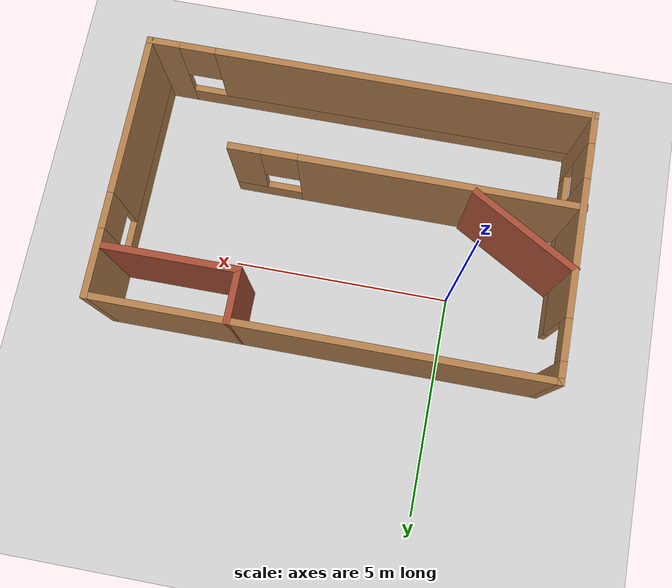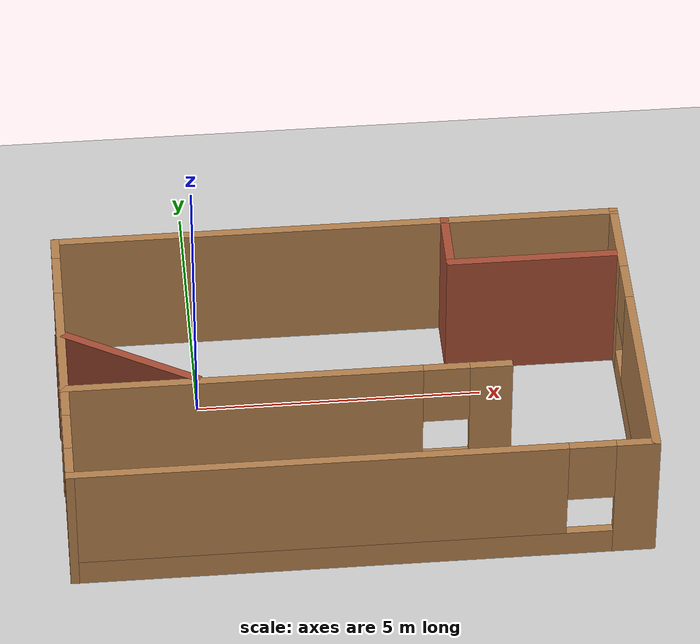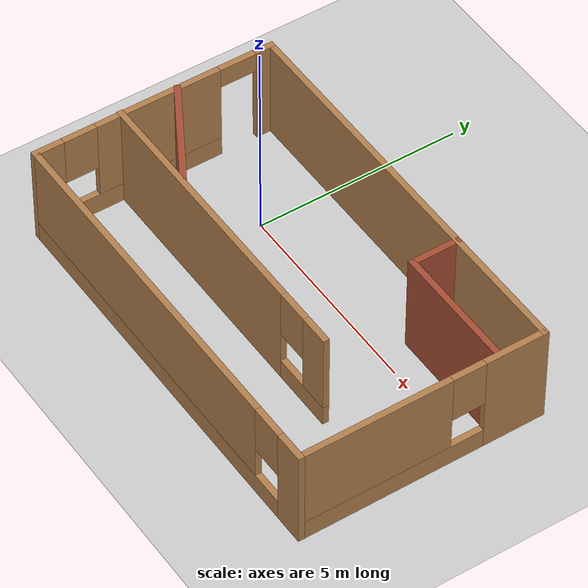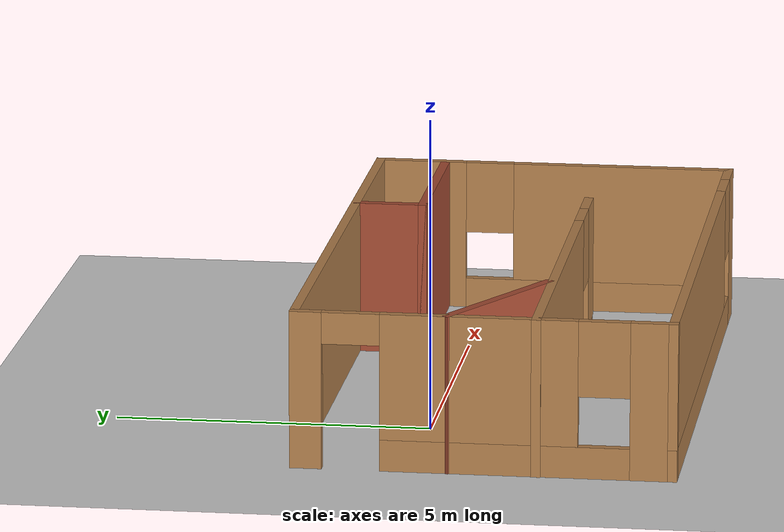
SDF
<sdf version="1.7">
 <world name="default">
  <light name="sun" type="directional">
   <pose>0 0 10 0 -0 0</pose>
   <diffuse>0.8 0.8 0.8 1</diffuse>
   <specular>0.2 0.2 0.2 1</specular>
   <attenuation>
    <range>1000</range>
    <constant>0.9</constant>
    <linear>0.01</linear>
    <quadratic>0.001</quadratic>
   </attenuation>
   <direction>-0.5 0.1 -0.9</direction>
   <spot><inner_angle>0</inner_angle><outer_angle>0</outer_angle><falloff>0</falloff></spot>
  </light>
  <model name="ground_plane">
   <static>1</static>
   <link name="link">
    <collision name="collision">
     <geometry><plane><normal>0 0 1</normal><size>100 100</size></plane></geometry>
     <surface><friction><ode><mu>100</mu><mu2>50</mu2></ode></friction></surface>
    </collision>
    <visual name="visual">
     <cast_shadows>0</cast_shadows>
     <geometry><plane><normal>0 0 1</normal><size>100 100</size></plane></geometry>
     <material>
      <script><uri>file://media/materials/scripts/gazebo.material</uri><name>Gazebo/Grey</name></script>
     </material>
    </visual>
   </link>
  </model>
  <gravity>0 0 -9.8</gravity>
  <magnetic_field>6e-06 2.3e-05 -4.2e-05</magnetic_field>
  <atmosphere type="adiabatic"/>
  <physics type="ode">
   <max_step_size>0.001</max_step_size>
   <real_time_factor>1</real_time_factor>
   <real_time_update_rate>1000</real_time_update_rate>
  </physics>
  <scene><ambient>0.4 0.4 0.4 1</ambient><background>0.7 0.7 0.7 1</background><shadows>1</shadows></scene>
  <spherical_coordinates>
   <surface_model>EARTH_WGS84</surface_model>
   <latitude_deg>0</latitude_deg>
   <longitude_deg>0</longitude_deg>
   <elevation>0</elevation>
   <heading_deg>0</heading_deg>
  </spherical_coordinates>
  <model name="Untitled">
   <pose>2.57742 1.69923 0 0 -0 0</pose>
   <link name="Wall_13">
    <collision name="Wall_13_Collision">
     <geometry><box><size>10 0.15 2.5</size></box></geometry>
     <pose>0 0 1.25 0 -0 0</pose>
    </collision>
    <visual name="Wall_13_Visual">
     <pose>0 0 1.25 0 -0 0</pose>
     <geometry><box><size>10 0.15 2.5</size></box></geometry>
     <material>
      <script><uri>file://media/materials/scripts/gazebo.material</uri><name>Gazebo/Wood</name></script>
      <ambient>1 1 1 1</ambient>
     </material>
     <meta><layer>0</layer></meta>
    </visual>
    <pose>0.013726 0.111531 0 0 -0 0</pose>
   </link>
   <link name="Wall_14">
    <pose>4.93873 -2.81347 0 0 -0 -1.5708</pose>
    <visual name="Wall_14_Visual_0">
     <pose>-2.23553 0 1.25 0 -0 0</pose>
     <geometry><box><size>1.52895 0.15 2.5</size></box></geometry>
     <material>
      <script><uri>file://media/materials/scripts/gazebo.material</uri><name>Gazebo/Wood</name></script>
      <ambient>1 1 1 1</ambient>
     </material>
     <meta><layer>0</layer></meta>
    </visual>
    <collision name="Wall_14_Collision_0">
     <geometry><box><size>1.52895 0.15 2.5</size></box></geometry>
     <pose>-2.23553 0 1.25 0 -0 0</pose>
    </collision>
    <visual name="Wall_14_Visual_1">
     <pose>0.764473 0 0.25 0 -0 0</pose>
     <geometry><box><size>4.47105 0.15 0.5</size></box></geometry>
     <material>
      <script><uri>file://media/materials/scripts/gazebo.material</uri><name>Gazebo/Wood</name></script>
      <ambient>1 1 1 1</ambient>
     </material>
     <meta><layer>0</layer></meta>
    </visual>
    <collision name="Wall_14_Collision_1">
     <geometry><box><size>4.47105 0.15 0.5</size></box></geometry>
     <pose>0.764473 0 0.25 0 -0 0</pose>
    </collision>
    <visual name="Wall_14_Visual_2">
     <pose>1.16447 0 1.5 0 -0 0</pose>
     <geometry><box><size>3.67105 0.15 2</size></box></geometry>
     <material>
      <script><uri>file://media/materials/scripts/gazebo.material</uri><name>Gazebo/Wood</name></script>
      <ambient>1 1 1 1</ambient>
     </material>
     <meta><layer>0</layer></meta>
    </visual>
    <collision name="Wall_14_Collision_2">
     <geometry><box><size>3.67105 0.15 2</size></box></geometry>
     <pose>1.16447 0 1.5 0 -0 0</pose>
    </collision>
    <visual name="Wall_14_Visual_3">
     <pose>-1.07105 0 1.9 0 -0 0</pose>
     <geometry><box><size>0.8 0.15 1.2</size></box></geometry>
     <material>
      <script><uri>file://media/materials/scripts/gazebo.material</uri><name>Gazebo/Wood</name></script>
      <ambient>1 1 1 1</ambient>
     </material>
     <meta><layer>0</layer></meta>
    </visual>
    <collision name="Wall_14_Collision_3">
     <geometry><box><size>0.8 0.15 1.2</size></box></geometry>
     <pose>-1.07105 0 1.9 0 -0 0</pose>
    </collision>
   </link>
   <link name="Wall_15">
    <pose>0.013726 -5.73847 0 0 -0 3.14159</pose>
    <visual name="Wall_15_Visual_0">
     <pose>-4.62751 0 1.25 0 -0 0</pose>
     <geometry><box><size>0.744989 0.15 2.5</size></box></geometry>
     <material>
      <script><uri>file://media/materials/scripts/gazebo.material</uri><name>Gazebo/Wood</name></script>
      <ambient>1 1 1 1</ambient>
     </material>
     <meta><layer>0</layer></meta>
    </visual>
    <collision name="Wall_15_Collision_0">
     <geometry><box><size>0.744989 0.15 2.5</size></box></geometry>
     <pose>-4.62751 0 1.25 0 -0 0</pose>
    </collision>
    <visual name="Wall_15_Visual_1">
     <pose>0.372494 0 0.25 0 -0 0</pose>
     <geometry><box><size>9.25501 0.15 0.5</size></box></geometry>
     <material>
      <script><uri>file://media/materials/scripts/gazebo.material</uri><name>Gazebo/Wood</name></script>
      <ambient>1 1 1 1</ambient>
     </material>
     <meta><layer>0</layer></meta>
    </visual>
    <collision name="Wall_15_Collision_1">
     <geometry><box><size>9.25501 0.15 0.5</size></box></geometry>
     <pose>0.372494 0 0.25 0 -0 0</pose>
    </collision>
    <visual name="Wall_15_Visual_2">
     <pose>0.772494 0 1.5 0 -0 0</pose>
     <geometry><box><size>8.45501 0.15 2</size></box></geometry>
     <material>
      <script><uri>file://media/materials/scripts/gazebo.material</uri><name>Gazebo/Wood</name></script>
      <ambient>1 1 1 1</ambient>
     </material>
     <meta><layer>0</layer></meta>
    </visual>
    <collision name="Wall_15_Collision_2">
     <geometry><box><size>8.45501 0.15 2</size></box></geometry>
     <pose>0.772494 0 1.5 0 -0 0</pose>
    </collision>
    <visual name="Wall_15_Visual_3">
     <pose>-3.85501 0 1.9 0 -0 0</pose>
     <geometry><box><size>0.8 0.15 1.2</size></box></geometry>
     <material>
      <script><uri>file://media/materials/scripts/gazebo.material</uri><name>Gazebo/Wood</name></script>
      <ambient>1 1 1 1</ambient>
     </material>
     <meta><layer>0</layer></meta>
    </visual>
    <collision name="Wall_15_Collision_3">
     <geometry><box><size>0.8 0.15 1.2</size></box></geometry>
     <pose>-3.85501 0 1.9 0 -0 0</pose>
    </collision>
   </link>
   <link name="Wall_16">
    <pose>-4.91127 -2.81347 0 0 -0 1.5708</pose>
    <visual name="Wall_16_Visual_0">
     <pose>-2.63364 0 1.25 0 -0 0</pose>
     <geometry><box><size>0.732723 0.15 2.5</size></box></geometry>
     <material>
      <script><uri>file://media/materials/scripts/gazebo.material</uri><name>Gazebo/Wood</name></script>
      <ambient>1 1 1 1</ambient>
     </material>
     <meta><layer>0</layer></meta>
    </visual>
    <collision name="Wall_16_Collision_0">
     <geometry><box><size>0.732723 0.15 2.5</size></box></geometry>
     <pose>-2.63364 0 1.25 0 -0 0</pose>
    </collision>
    <visual name="Wall_16_Visual_1">
     <pose>2.75025 0 1.25 0 -0 0</pose>
     <geometry><box><size>0.499503 0.15 2.5</size></box></geometry>
     <material>
      <script><uri>file://media/materials/scripts/gazebo.material</uri><name>Gazebo/Wood</name></script>
      <ambient>1 1 1 1</ambient>
     </material>
     <meta><layer>0</layer></meta>
    </visual>
    <collision name="Wall_16_Collision_1">
     <geometry><box><size>0.499503 0.15 2.5</size></box></geometry>
     <pose>2.75025 0 1.25 0 -0 0</pose>
    </collision>
    <visual name="Wall_16_Visual_2">
     <pose>-0.33339 0 0.25 0 -0 0</pose>
     <geometry><box><size>3.86777 0.15 0.5</size></box></geometry>
     <material>
      <script><uri>file://media/materials/scripts/gazebo.material</uri><name>Gazebo/Wood</name></script>
      <ambient>1 1 1 1</ambient>
     </material>
     <meta><layer>0</layer></meta>
    </visual>
    <collision name="Wall_16_Collision_2">
     <geometry><box><size>3.86777 0.15 0.5</size></box></geometry>
     <pose>-0.33339 0 0.25 0 -0 0</pose>
    </collision>
    <visual name="Wall_16_Visual_3">
     <pose>0.06661 0 1.5 0 -0 0</pose>
     <geometry><box><size>3.06777 0.15 2</size></box></geometry>
     <material>
      <script><uri>file://media/materials/scripts/gazebo.material</uri><name>Gazebo/Wood</name></script>
      <ambient>1 1 1 1</ambient>
     </material>
     <meta><layer>0</layer></meta>
    </visual>
    <collision name="Wall_16_Collision_3">
     <geometry><box><size>3.06777 0.15 2</size></box></geometry>
     <pose>0.06661 0 1.5 0 -0 0</pose>
    </collision>
    <visual name="Wall_16_Visual_4">
     <pose>-1.86728 0 1.9 0 -0 0</pose>
     <geometry><box><size>0.8 0.15 1.2</size></box></geometry>
     <material>
      <script><uri>file://media/materials/scripts/gazebo.material</uri><name>Gazebo/Wood</name></script>
      <ambient>1 1 1 1</ambient>
     </material>
     <meta><layer>0</layer></meta>
    </visual>
    <collision name="Wall_16_Collision_4">
     <geometry><box><size>0.8 0.15 1.2</size></box></geometry>
     <pose>-1.86728 0 1.9 0 -0 0</pose>
    </collision>
    <visual name="Wall_16_Visual_5">
     <pose>2.0505 0 2.25 0 -0 0</pose>
     <geometry><box><size>0.9 0.15 0.5</size></box></geometry>
     <material>
      <script><uri>file://media/materials/scripts/gazebo.material</uri><name>Gazebo/Wood</name></script>
      <ambient>1 1 1 1</ambient>
     </material>
     <meta><layer>0</layer></meta>
    </visual>
    <collision name="Wall_16_Collision_5">
     <geometry><box><size>0.9 0.15 0.5</size></box></geometry>
     <pose>2.0505 0 2.25 0 -0 0</pose>
    </collision>
   </link>
   <link name="Wall_18">
    <pose>-1.12876 -3.63134 0 0 -0 0</pose>
    <visual name="Wall_18_Visual_0">
     <pose>-0.766858 0 1.25 0 -0 0</pose>
     <geometry><box><size>6.21628 0.15 2.5</size></box></geometry>
     <material>
      <script><uri>file://media/materials/scripts/gazebo.material</uri><name>Gazebo/Wood</name></script>
      <ambient>1 1 1 1</ambient>
     </material>
     <meta><layer>0</layer></meta>
    </visual>
    <collision name="Wall_18_Collision_0">
     <geometry><box><size>6.21628 0.15 2.5</size></box></geometry>
     <pose>-0.766858 0 1.25 0 -0 0</pose>
    </collision>
    <visual name="Wall_18_Visual_1">
     <pose>3.10814 0 0.25 0 -0 0</pose>
     <geometry><box><size>1.53372 0.15 0.5</size></box></geometry>
     <material>
      <script><uri>file://media/materials/scripts/gazebo.material</uri><name>Gazebo/Wood</name></script>
      <ambient>1 1 1 1</ambient>
     </material>
     <meta><layer>0</layer></meta>
    </visual>
    <collision name="Wall_18_Collision_1">
     <geometry><box><size>1.53372 0.15 0.5</size></box></geometry>
     <pose>3.10814 0 0.25 0 -0 0</pose>
    </collision>
    <visual name="Wall_18_Visual_2">
     <pose>3.50814 0 1.5 0 -0 0</pose>
     <geometry><box><size>0.733717 0.15 2</size></box></geometry>
     <material>
      <script><uri>file://media/materials/scripts/gazebo.material</uri><name>Gazebo/Wood</name></script>
      <ambient>1 1 1 1</ambient>
     </material>
     <meta><layer>0</layer></meta>
    </visual>
    <collision name="Wall_18_Collision_2">
     <geometry><box><size>0.733717 0.15 2</size></box></geometry>
     <pose>3.50814 0 1.5 0 -0 0</pose>
    </collision>
    <visual name="Wall_18_Visual_3">
     <pose>2.74128 0 1.9 0 -0 0</pose>
     <geometry><box><size>0.8 0.15 1.2</size></box></geometry>
     <material>
      <script><uri>file://media/materials/scripts/gazebo.material</uri><name>Gazebo/Wood</name></script>
      <ambient>1 1 1 1</ambient>
     </material>
     <meta><layer>0</layer></meta>
    </visual>
    <collision name="Wall_18_Collision_3">
     <geometry><box><size>0.8 0.15 1.2</size></box></geometry>
     <pose>2.74128 0 1.9 0 -0 0</pose>
    </collision>
   </link>
   <link name="Wall_20">
    <collision name="Wall_20_Collision">
     <geometry><box><size>1.25 0.15 2.5</size></box></geometry>
     <pose>0 0 1.25 0 -0 0</pose>
    </collision>
    <visual name="Wall_20_Visual">
     <pose>0 0 1.25 0 -0 0</pose>
     <geometry><box><size>1.25 0.15 2.5</size></box></geometry>
     <material>
      <script><uri>file://media/materials/scripts/gazebo.material</uri><name>Gazebo/Bricks</name></script>
      <ambient>1 1 1 1</ambient>
     </material>
     <meta><layer>0</layer></meta>
    </visual>
    <pose>1.94483 -0.438469 0 0 -0 -1.5708</pose>
   </link>
   <link name="Wall_21">
    <collision name="Wall_21_Collision">
     <geometry><box><size>3 0.15 2.5</size></box></geometry>
     <pose>0 0 1.25 0 -0 0</pose>
    </collision>
    <visual name="Wall_21_Visual">
     <pose>0 0 1.25 0 -0 0</pose>
     <geometry><box><size>3 0.15 2.5</size></box></geometry>
     <material>
      <script><uri>file://media/materials/scripts/gazebo.material</uri><name>Gazebo/Bricks</name></script>
      <ambient>1 1 1 1</ambient>
     </material>
     <meta><layer>0</layer></meta>
    </visual>
    <pose>3.36983 -0.98847 0 0 -0 0</pose>
   </link>
   <link name="Wall_23">
    <collision name="Wall_23_Collision">
     <geometry><box><size>2.75 0.15 2.5</size></box></geometry>
     <pose>0 0 1.25 0 -0 0</pose>
    </collision>
    <visual name="Wall_23_Visual">
     <pose>0 0 1.25 0 -0 0</pose>
     <geometry><box><size>2.75 0.15 2.5</size></box></geometry>
     <material>
      <script><uri>file://media/materials/scripts/gazebo.material</uri><name>Gazebo/Bricks</name></script>
      <ambient>1 1 1 1</ambient>
     </material>
     <meta><layer>0</layer></meta>
    </visual>
    <pose>-3.78544 -2.89963 0 0 -0 -0.523599</pose>
   </link>
   <static>1</static>
  </model>
 </world>
</sdf>
